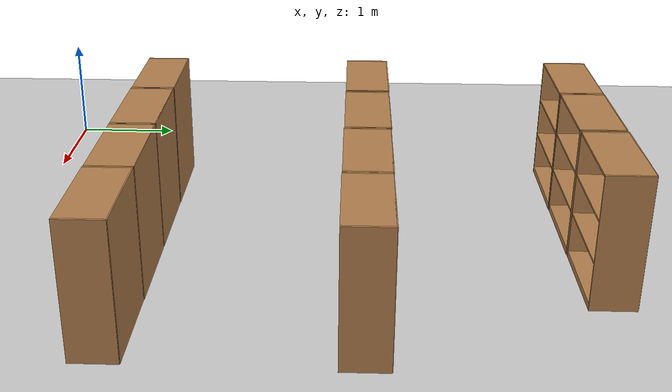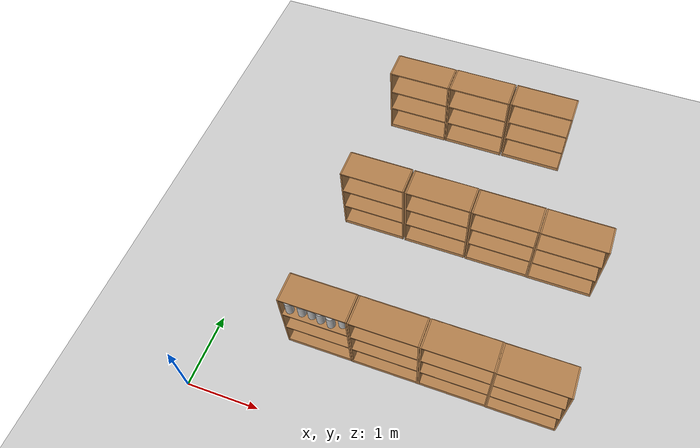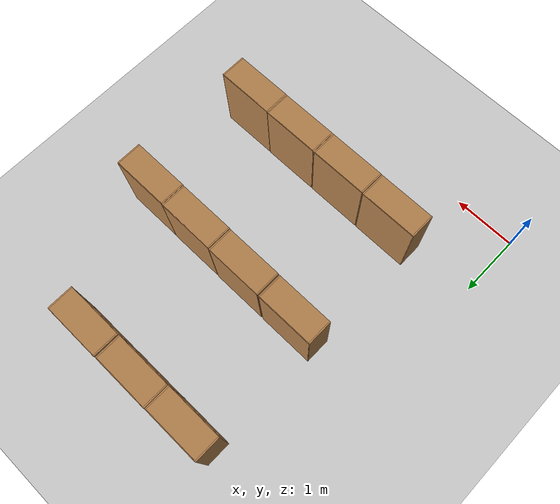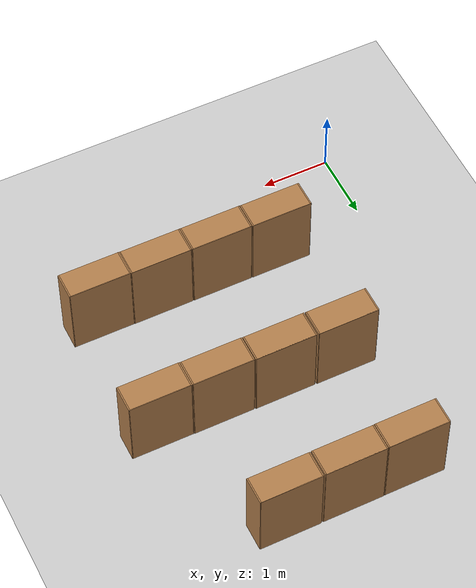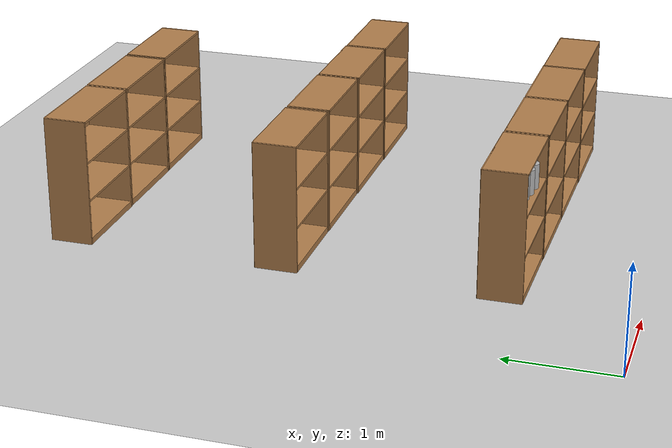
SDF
<sdf version="1.7">
 <world name="default">
  <model name="ground_plane">
   <static>1</static>
   <link name="link">
    <collision name="collision">
     <geometry><plane><normal>0 0 1</normal><size>100 100</size></plane></geometry>
     <surface>
      <contact><collide_bitmask>65535</collide_bitmask></contact>
      <friction><ode><mu>100</mu><mu2>50</mu2></ode></friction>
     </surface>
    </collision>
    <visual name="visual">
     <cast_shadows>0</cast_shadows>
     <geometry><plane><normal>0 0 1</normal><size>100 100</size></plane></geometry>
     <material>
      <script><uri>file://media/materials/scripts/gazebo.material</uri><name>Gazebo/Grey</name></script>
     </material>
    </visual>
   </link>
  </model>
  <model name="bookshelf">
   <static>1</static>
   <link name="link">
    <inertial><mass>1</mass></inertial>
    <collision name="back">
     <pose>0 0.005 0.6 0 -0 0</pose>
     <geometry><box><size>0.9 0.01 1.2</size></box></geometry>
    </collision>
    <visual name="visual1">
     <pose>0 0.005 0.6 0 -0 0</pose>
     <geometry><box><size>0.9 0.01 1.2</size></box></geometry>
     <material>
      <script><uri>file://media/materials/scripts/gazebo.material</uri><name>Gazebo/Wood</name></script>
     </material>
    </visual>
    <collision name="left_side">
     <pose>0.45 -0.195 0.6 0 -0 0</pose>
     <geometry><box><size>0.02 0.4 1.2</size></box></geometry>
    </collision>
    <visual name="visual2">
     <pose>0.45 -0.195 0.6 0 -0 0</pose>
     <geometry><box><size>0.02 0.4 1.2</size></box></geometry>
     <material>
      <script><uri>file://media/materials/scripts/gazebo.material</uri><name>Gazebo/Wood</name></script>
     </material>
    </visual>
    <collision name="right_side">
     <pose>-0.45 -0.195 0.6 0 -0 0</pose>
     <geometry><box><size>0.02 0.4 1.2</size></box></geometry>
    </collision>
    <visual name="visual3">
     <pose>-0.45 -0.195 0.6 0 -0 0</pose>
     <geometry><box><size>0.02 0.4 1.2</size></box></geometry>
     <material>
      <script><uri>file://media/materials/scripts/gazebo.material</uri><name>Gazebo/Wood</name></script>
     </material>
    </visual>
    <collision name="bottom">
     <pose>0 -0.195 0.03 0 -0 0</pose>
     <geometry><box><size>0.88 0.4 0.06</size></box></geometry>
    </collision>
    <visual name="visual4">
     <pose>0 -0.195 0.03 0 -0 0</pose>
     <geometry><box><size>0.88 0.4 0.06</size></box></geometry>
     <material>
      <script><uri>file://media/materials/scripts/gazebo.material</uri><name>Gazebo/Wood</name></script>
     </material>
    </visual>
    <collision name="top">
     <pose>0 -0.195 1.19 0 -0 0</pose>
     <geometry><box><size>0.88 0.4 0.02</size></box></geometry>
    </collision>
    <visual name="visual5">
     <pose>0 -0.195 1.19 0 -0 0</pose>
     <geometry><box><size>0.88 0.4 0.02</size></box></geometry>
     <material>
      <script><uri>file://media/materials/scripts/gazebo.material</uri><name>Gazebo/Wood</name></script>
     </material>
    </visual>
    <collision name="low_shelf">
     <pose>0 -0.195 0.43 0 -0 0</pose>
     <geometry><box><size>0.88 0.4 0.02</size></box></geometry>
    </collision>
    <visual name="visual6">
     <pose>0 -0.195 0.43 0 -0 0</pose>
     <geometry><box><size>0.88 0.4 0.02</size></box></geometry>
     <material>
      <script><uri>file://media/materials/scripts/gazebo.material</uri><name>Gazebo/Wood</name></script>
     </material>
    </visual>
    <collision name="high_shelf">
     <pose>0 -0.195 0.8 0 -0 0</pose>
     <geometry><box><size>0.88 0.4 0.02</size></box></geometry>
    </collision>
    <visual name="visual7">
     <pose>0 -0.195 0.8 0 -0 0</pose>
     <geometry><box><size>0.88 0.4 0.02</size></box></geometry>
     <material>
      <script><uri>file://media/materials/scripts/gazebo.material</uri><name>Gazebo/Wood</name></script>
     </material>
    </visual>
   </link>
   <pose>1.45184 3.43534 0 0 -0 0</pose>
  </model>
  <model name="bookshelf_0">
   <static>1</static>
   <link name="link">
    <inertial><mass>1</mass></inertial>
    <collision name="back">
     <pose>0 0.005 0.6 0 -0 0</pose>
     <geometry><box><size>0.9 0.01 1.2</size></box></geometry>
    </collision>
    <visual name="visual1">
     <pose>0 0.005 0.6 0 -0 0</pose>
     <geometry><box><size>0.9 0.01 1.2</size></box></geometry>
     <material>
      <script><uri>file://media/materials/scripts/gazebo.material</uri><name>Gazebo/Wood</name></script>
     </material>
    </visual>
    <collision name="left_side">
     <pose>0.45 -0.195 0.6 0 -0 0</pose>
     <geometry><box><size>0.02 0.4 1.2</size></box></geometry>
    </collision>
    <visual name="visual2">
     <pose>0.45 -0.195 0.6 0 -0 0</pose>
     <geometry><box><size>0.02 0.4 1.2</size></box></geometry>
     <material>
      <script><uri>file://media/materials/scripts/gazebo.material</uri><name>Gazebo/Wood</name></script>
     </material>
    </visual>
    <collision name="right_side">
     <pose>-0.45 -0.195 0.6 0 -0 0</pose>
     <geometry><box><size>0.02 0.4 1.2</size></box></geometry>
    </collision>
    <visual name="visual3">
     <pose>-0.45 -0.195 0.6 0 -0 0</pose>
     <geometry><box><size>0.02 0.4 1.2</size></box></geometry>
     <material>
      <script><uri>file://media/materials/scripts/gazebo.material</uri><name>Gazebo/Wood</name></script>
     </material>
    </visual>
    <collision name="bottom">
     <pose>0 -0.195 0.03 0 -0 0</pose>
     <geometry><box><size>0.88 0.4 0.06</size></box></geometry>
    </collision>
    <visual name="visual4">
     <pose>0 -0.195 0.03 0 -0 0</pose>
     <geometry><box><size>0.88 0.4 0.06</size></box></geometry>
     <material>
      <script><uri>file://media/materials/scripts/gazebo.material</uri><name>Gazebo/Wood</name></script>
     </material>
    </visual>
    <collision name="top">
     <pose>0 -0.195 1.19 0 -0 0</pose>
     <geometry><box><size>0.88 0.4 0.02</size></box></geometry>
    </collision>
    <visual name="visual5">
     <pose>0 -0.195 1.19 0 -0 0</pose>
     <geometry><box><size>0.88 0.4 0.02</size></box></geometry>
     <material>
      <script><uri>file://media/materials/scripts/gazebo.material</uri><name>Gazebo/Wood</name></script>
     </material>
    </visual>
    <collision name="low_shelf">
     <pose>0 -0.195 0.43 0 -0 0</pose>
     <geometry><box><size>0.88 0.4 0.02</size></box></geometry>
    </collision>
    <visual name="visual6">
     <pose>0 -0.195 0.43 0 -0 0</pose>
     <geometry><box><size>0.88 0.4 0.02</size></box></geometry>
     <material>
      <script><uri>file://media/materials/scripts/gazebo.material</uri><name>Gazebo/Wood</name></script>
     </material>
    </visual>
    <collision name="high_shelf">
     <pose>0 -0.195 0.8 0 -0 0</pose>
     <geometry><box><size>0.88 0.4 0.02</size></box></geometry>
    </collision>
    <visual name="visual7">
     <pose>0 -0.195 0.8 0 -0 0</pose>
     <geometry><box><size>0.88 0.4 0.02</size></box></geometry>
     <material>
      <script><uri>file://media/materials/scripts/gazebo.material</uri><name>Gazebo/Wood</name></script>
     </material>
    </visual>
   </link>
   <pose>2.39092 3.43134 0 0 -0 0</pose>
  </model>
  <model name="bookshelf_1">
   <static>1</static>
   <link name="link">
    <inertial><mass>1</mass></inertial>
    <collision name="back">
     <pose>0 0.005 0.6 0 -0 0</pose>
     <geometry><box><size>0.9 0.01 1.2</size></box></geometry>
    </collision>
    <visual name="visual1">
     <pose>0 0.005 0.6 0 -0 0</pose>
     <geometry><box><size>0.9 0.01 1.2</size></box></geometry>
     <material>
      <script><uri>file://media/materials/scripts/gazebo.material</uri><name>Gazebo/Wood</name></script>
     </material>
    </visual>
    <collision name="left_side">
     <pose>0.45 -0.195 0.6 0 -0 0</pose>
     <geometry><box><size>0.02 0.4 1.2</size></box></geometry>
    </collision>
    <visual name="visual2">
     <pose>0.45 -0.195 0.6 0 -0 0</pose>
     <geometry><box><size>0.02 0.4 1.2</size></box></geometry>
     <material>
      <script><uri>file://media/materials/scripts/gazebo.material</uri><name>Gazebo/Wood</name></script>
     </material>
    </visual>
    <collision name="right_side">
     <pose>-0.45 -0.195 0.6 0 -0 0</pose>
     <geometry><box><size>0.02 0.4 1.2</size></box></geometry>
    </collision>
    <visual name="visual3">
     <pose>-0.45 -0.195 0.6 0 -0 0</pose>
     <geometry><box><size>0.02 0.4 1.2</size></box></geometry>
     <material>
      <script><uri>file://media/materials/scripts/gazebo.material</uri><name>Gazebo/Wood</name></script>
     </material>
    </visual>
    <collision name="bottom">
     <pose>0 -0.195 0.03 0 -0 0</pose>
     <geometry><box><size>0.88 0.4 0.06</size></box></geometry>
    </collision>
    <visual name="visual4">
     <pose>0 -0.195 0.03 0 -0 0</pose>
     <geometry><box><size>0.88 0.4 0.06</size></box></geometry>
     <material>
      <script><uri>file://media/materials/scripts/gazebo.material</uri><name>Gazebo/Wood</name></script>
     </material>
    </visual>
    <collision name="top">
     <pose>0 -0.195 1.19 0 -0 0</pose>
     <geometry><box><size>0.88 0.4 0.02</size></box></geometry>
    </collision>
    <visual name="visual5">
     <pose>0 -0.195 1.19 0 -0 0</pose>
     <geometry><box><size>0.88 0.4 0.02</size></box></geometry>
     <material>
      <script><uri>file://media/materials/scripts/gazebo.material</uri><name>Gazebo/Wood</name></script>
     </material>
    </visual>
    <collision name="low_shelf">
     <pose>0 -0.195 0.43 0 -0 0</pose>
     <geometry><box><size>0.88 0.4 0.02</size></box></geometry>
    </collision>
    <visual name="visual6">
     <pose>0 -0.195 0.43 0 -0 0</pose>
     <geometry><box><size>0.88 0.4 0.02</size></box></geometry>
     <material>
      <script><uri>file://media/materials/scripts/gazebo.material</uri><name>Gazebo/Wood</name></script>
     </material>
    </visual>
    <collision name="high_shelf">
     <pose>0 -0.195 0.8 0 -0 0</pose>
     <geometry><box><size>0.88 0.4 0.02</size></box></geometry>
    </collision>
    <visual name="visual7">
     <pose>0 -0.195 0.8 0 -0 0</pose>
     <geometry><box><size>0.88 0.4 0.02</size></box></geometry>
     <material>
      <script><uri>file://media/materials/scripts/gazebo.material</uri><name>Gazebo/Wood</name></script>
     </material>
    </visual>
   </link>
   <pose>3.31925 3.42546 0 0 -0 0</pose>
  </model>
  <model name="bookshelf_2">
   <static>1</static>
   <link name="link">
    <inertial><mass>1</mass></inertial>
    <collision name="back">
     <pose>0 0.005 0.6 0 -0 0</pose>
     <geometry><box><size>0.9 0.01 1.2</size></box></geometry>
    </collision>
    <visual name="visual1">
     <pose>0 0.005 0.6 0 -0 0</pose>
     <geometry><box><size>0.9 0.01 1.2</size></box></geometry>
     <material>
      <script><uri>file://media/materials/scripts/gazebo.material</uri><name>Gazebo/Wood</name></script>
     </material>
    </visual>
    <collision name="left_side">
     <pose>0.45 -0.195 0.6 0 -0 0</pose>
     <geometry><box><size>0.02 0.4 1.2</size></box></geometry>
    </collision>
    <visual name="visual2">
     <pose>0.45 -0.195 0.6 0 -0 0</pose>
     <geometry><box><size>0.02 0.4 1.2</size></box></geometry>
     <material>
      <script><uri>file://media/materials/scripts/gazebo.material</uri><name>Gazebo/Wood</name></script>
     </material>
    </visual>
    <collision name="right_side">
     <pose>-0.45 -0.195 0.6 0 -0 0</pose>
     <geometry><box><size>0.02 0.4 1.2</size></box></geometry>
    </collision>
    <visual name="visual3">
     <pose>-0.45 -0.195 0.6 0 -0 0</pose>
     <geometry><box><size>0.02 0.4 1.2</size></box></geometry>
     <material>
      <script><uri>file://media/materials/scripts/gazebo.material</uri><name>Gazebo/Wood</name></script>
     </material>
    </visual>
    <collision name="bottom">
     <pose>0 -0.195 0.03 0 -0 0</pose>
     <geometry><box><size>0.88 0.4 0.06</size></box></geometry>
    </collision>
    <visual name="visual4">
     <pose>0 -0.195 0.03 0 -0 0</pose>
     <geometry><box><size>0.88 0.4 0.06</size></box></geometry>
     <material>
      <script><uri>file://media/materials/scripts/gazebo.material</uri><name>Gazebo/Wood</name></script>
     </material>
    </visual>
    <collision name="top">
     <pose>0 -0.195 1.19 0 -0 0</pose>
     <geometry><box><size>0.88 0.4 0.02</size></box></geometry>
    </collision>
    <visual name="visual5">
     <pose>0 -0.195 1.19 0 -0 0</pose>
     <geometry><box><size>0.88 0.4 0.02</size></box></geometry>
     <material>
      <script><uri>file://media/materials/scripts/gazebo.material</uri><name>Gazebo/Wood</name></script>
     </material>
    </visual>
    <collision name="low_shelf">
     <pose>0 -0.195 0.43 0 -0 0</pose>
     <geometry><box><size>0.88 0.4 0.02</size></box></geometry>
    </collision>
    <visual name="visual6">
     <pose>0 -0.195 0.43 0 -0 0</pose>
     <geometry><box><size>0.88 0.4 0.02</size></box></geometry>
     <material>
      <script><uri>file://media/materials/scripts/gazebo.material</uri><name>Gazebo/Wood</name></script>
     </material>
    </visual>
    <collision name="high_shelf">
     <pose>0 -0.195 0.8 0 -0 0</pose>
     <geometry><box><size>0.88 0.4 0.02</size></box></geometry>
    </collision>
    <visual name="visual7">
     <pose>0 -0.195 0.8 0 -0 0</pose>
     <geometry><box><size>0.88 0.4 0.02</size></box></geometry>
     <material>
      <script><uri>file://media/materials/scripts/gazebo.material</uri><name>Gazebo/Wood</name></script>
     </material>
    </visual>
   </link>
   <pose>4.24207 3.42066 0 0 -0 0</pose>
  </model>
  <model name="bookshelf_3">
   <static>1</static>
   <link name="link">
    <inertial><mass>1</mass></inertial>
    <collision name="back">
     <pose>0 0.005 0.6 0 -0 0</pose>
     <geometry><box><size>0.9 0.01 1.2</size></box></geometry>
    </collision>
    <visual name="visual1">
     <pose>0 0.005 0.6 0 -0 0</pose>
     <geometry><box><size>0.9 0.01 1.2</size></box></geometry>
     <material>
      <script><uri>file://media/materials/scripts/gazebo.material</uri><name>Gazebo/Wood</name></script>
     </material>
    </visual>
    <collision name="left_side">
     <pose>0.45 -0.195 0.6 0 -0 0</pose>
     <geometry><box><size>0.02 0.4 1.2</size></box></geometry>
    </collision>
    <visual name="visual2">
     <pose>0.45 -0.195 0.6 0 -0 0</pose>
     <geometry><box><size>0.02 0.4 1.2</size></box></geometry>
     <material>
      <script><uri>file://media/materials/scripts/gazebo.material</uri><name>Gazebo/Wood</name></script>
     </material>
    </visual>
    <collision name="right_side">
     <pose>-0.45 -0.195 0.6 0 -0 0</pose>
     <geometry><box><size>0.02 0.4 1.2</size></box></geometry>
    </collision>
    <visual name="visual3">
     <pose>-0.45 -0.195 0.6 0 -0 0</pose>
     <geometry><box><size>0.02 0.4 1.2</size></box></geometry>
     <material>
      <script><uri>file://media/materials/scripts/gazebo.material</uri><name>Gazebo/Wood</name></script>
     </material>
    </visual>
    <collision name="bottom">
     <pose>0 -0.195 0.03 0 -0 0</pose>
     <geometry><box><size>0.88 0.4 0.06</size></box></geometry>
    </collision>
    <visual name="visual4">
     <pose>0 -0.195 0.03 0 -0 0</pose>
     <geometry><box><size>0.88 0.4 0.06</size></box></geometry>
     <material>
      <script><uri>file://media/materials/scripts/gazebo.material</uri><name>Gazebo/Wood</name></script>
     </material>
    </visual>
    <collision name="top">
     <pose>0 -0.195 1.19 0 -0 0</pose>
     <geometry><box><size>0.88 0.4 0.02</size></box></geometry>
    </collision>
    <visual name="visual5">
     <pose>0 -0.195 1.19 0 -0 0</pose>
     <geometry><box><size>0.88 0.4 0.02</size></box></geometry>
     <material>
      <script><uri>file://media/materials/scripts/gazebo.material</uri><name>Gazebo/Wood</name></script>
     </material>
    </visual>
    <collision name="low_shelf">
     <pose>0 -0.195 0.43 0 -0 0</pose>
     <geometry><box><size>0.88 0.4 0.02</size></box></geometry>
    </collision>
    <visual name="visual6">
     <pose>0 -0.195 0.43 0 -0 0</pose>
     <geometry><box><size>0.88 0.4 0.02</size></box></geometry>
     <material>
      <script><uri>file://media/materials/scripts/gazebo.material</uri><name>Gazebo/Wood</name></script>
     </material>
    </visual>
    <collision name="high_shelf">
     <pose>0 -0.195 0.8 0 -0 0</pose>
     <geometry><box><size>0.88 0.4 0.02</size></box></geometry>
    </collision>
    <visual name="visual7">
     <pose>0 -0.195 0.8 0 -0 0</pose>
     <geometry><box><size>0.88 0.4 0.02</size></box></geometry>
     <material>
      <script><uri>file://media/materials/scripts/gazebo.material</uri><name>Gazebo/Wood</name></script>
     </material>
    </visual>
   </link>
   <pose>1.4441 1.40563 0 -0.000728 0 0</pose>
  </model>
  <model name="bookshelf_4">
   <static>1</static>
   <link name="link">
    <inertial><mass>1</mass></inertial>
    <collision name="back">
     <pose>0 0.005 0.6 0 -0 0</pose>
     <geometry><box><size>0.9 0.01 1.2</size></box></geometry>
    </collision>
    <visual name="visual1">
     <pose>0 0.005 0.6 0 -0 0</pose>
     <geometry><box><size>0.9 0.01 1.2</size></box></geometry>
     <material>
      <script><uri>file://media/materials/scripts/gazebo.material</uri><name>Gazebo/Wood</name></script>
     </material>
    </visual>
    <collision name="left_side">
     <pose>0.45 -0.195 0.6 0 -0 0</pose>
     <geometry><box><size>0.02 0.4 1.2</size></box></geometry>
    </collision>
    <visual name="visual2">
     <pose>0.45 -0.195 0.6 0 -0 0</pose>
     <geometry><box><size>0.02 0.4 1.2</size></box></geometry>
     <material>
      <script><uri>file://media/materials/scripts/gazebo.material</uri><name>Gazebo/Wood</name></script>
     </material>
    </visual>
    <collision name="right_side">
     <pose>-0.45 -0.195 0.6 0 -0 0</pose>
     <geometry><box><size>0.02 0.4 1.2</size></box></geometry>
    </collision>
    <visual name="visual3">
     <pose>-0.45 -0.195 0.6 0 -0 0</pose>
     <geometry><box><size>0.02 0.4 1.2</size></box></geometry>
     <material>
      <script><uri>file://media/materials/scripts/gazebo.material</uri><name>Gazebo/Wood</name></script>
     </material>
    </visual>
    <collision name="bottom">
     <pose>0 -0.195 0.03 0 -0 0</pose>
     <geometry><box><size>0.88 0.4 0.06</size></box></geometry>
    </collision>
    <visual name="visual4">
     <pose>0 -0.195 0.03 0 -0 0</pose>
     <geometry><box><size>0.88 0.4 0.06</size></box></geometry>
     <material>
      <script><uri>file://media/materials/scripts/gazebo.material</uri><name>Gazebo/Wood</name></script>
     </material>
    </visual>
    <collision name="top">
     <pose>0 -0.195 1.19 0 -0 0</pose>
     <geometry><box><size>0.88 0.4 0.02</size></box></geometry>
    </collision>
    <visual name="visual5">
     <pose>0 -0.195 1.19 0 -0 0</pose>
     <geometry><box><size>0.88 0.4 0.02</size></box></geometry>
     <material>
      <script><uri>file://media/materials/scripts/gazebo.material</uri><name>Gazebo/Wood</name></script>
     </material>
    </visual>
    <collision name="low_shelf">
     <pose>0 -0.195 0.43 0 -0 0</pose>
     <geometry><box><size>0.88 0.4 0.02</size></box></geometry>
    </collision>
    <visual name="visual6">
     <pose>0 -0.195 0.43 0 -0 0</pose>
     <geometry><box><size>0.88 0.4 0.02</size></box></geometry>
     <material>
      <script><uri>file://media/materials/scripts/gazebo.material</uri><name>Gazebo/Wood</name></script>
     </material>
    </visual>
    <collision name="high_shelf">
     <pose>0 -0.195 0.8 0 -0 0</pose>
     <geometry><box><size>0.88 0.4 0.02</size></box></geometry>
    </collision>
    <visual name="visual7">
     <pose>0 -0.195 0.8 0 -0 0</pose>
     <geometry><box><size>0.88 0.4 0.02</size></box></geometry>
     <material>
      <script><uri>file://media/materials/scripts/gazebo.material</uri><name>Gazebo/Wood</name></script>
     </material>
    </visual>
   </link>
   <pose>2.36984 1.40261 0 0 -0 0</pose>
  </model>
  <model name="bookshelf_5">
   <static>1</static>
   <link name="link">
    <inertial><mass>1</mass></inertial>
    <collision name="back">
     <pose>0 0.005 0.6 0 -0 0</pose>
     <geometry><box><size>0.9 0.01 1.2</size></box></geometry>
    </collision>
    <visual name="visual1">
     <pose>0 0.005 0.6 0 -0 0</pose>
     <geometry><box><size>0.9 0.01 1.2</size></box></geometry>
     <material>
      <script><uri>file://media/materials/scripts/gazebo.material</uri><name>Gazebo/Wood</name></script>
     </material>
    </visual>
    <collision name="left_side">
     <pose>0.45 -0.195 0.6 0 -0 0</pose>
     <geometry><box><size>0.02 0.4 1.2</size></box></geometry>
    </collision>
    <visual name="visual2">
     <pose>0.45 -0.195 0.6 0 -0 0</pose>
     <geometry><box><size>0.02 0.4 1.2</size></box></geometry>
     <material>
      <script><uri>file://media/materials/scripts/gazebo.material</uri><name>Gazebo/Wood</name></script>
     </material>
    </visual>
    <collision name="right_side">
     <pose>-0.45 -0.195 0.6 0 -0 0</pose>
     <geometry><box><size>0.02 0.4 1.2</size></box></geometry>
    </collision>
    <visual name="visual3">
     <pose>-0.45 -0.195 0.6 0 -0 0</pose>
     <geometry><box><size>0.02 0.4 1.2</size></box></geometry>
     <material>
      <script><uri>file://media/materials/scripts/gazebo.material</uri><name>Gazebo/Wood</name></script>
     </material>
    </visual>
    <collision name="bottom">
     <pose>0 -0.195 0.03 0 -0 0</pose>
     <geometry><box><size>0.88 0.4 0.06</size></box></geometry>
    </collision>
    <visual name="visual4">
     <pose>0 -0.195 0.03 0 -0 0</pose>
     <geometry><box><size>0.88 0.4 0.06</size></box></geometry>
     <material>
      <script><uri>file://media/materials/scripts/gazebo.material</uri><name>Gazebo/Wood</name></script>
     </material>
    </visual>
    <collision name="top">
     <pose>0 -0.195 1.19 0 -0 0</pose>
     <geometry><box><size>0.88 0.4 0.02</size></box></geometry>
    </collision>
    <visual name="visual5">
     <pose>0 -0.195 1.19 0 -0 0</pose>
     <geometry><box><size>0.88 0.4 0.02</size></box></geometry>
     <material>
      <script><uri>file://media/materials/scripts/gazebo.material</uri><name>Gazebo/Wood</name></script>
     </material>
    </visual>
    <collision name="low_shelf">
     <pose>0 -0.195 0.43 0 -0 0</pose>
     <geometry><box><size>0.88 0.4 0.02</size></box></geometry>
    </collision>
    <visual name="visual6">
     <pose>0 -0.195 0.43 0 -0 0</pose>
     <geometry><box><size>0.88 0.4 0.02</size></box></geometry>
     <material>
      <script><uri>file://media/materials/scripts/gazebo.material</uri><name>Gazebo/Wood</name></script>
     </material>
    </visual>
    <collision name="high_shelf">
     <pose>0 -0.195 0.8 0 -0 0</pose>
     <geometry><box><size>0.88 0.4 0.02</size></box></geometry>
    </collision>
    <visual name="visual7">
     <pose>0 -0.195 0.8 0 -0 0</pose>
     <geometry><box><size>0.88 0.4 0.02</size></box></geometry>
     <material>
      <script><uri>file://media/materials/scripts/gazebo.material</uri><name>Gazebo/Wood</name></script>
     </material>
    </visual>
   </link>
   <pose>3.29308 1.40142 0 0 -0 0</pose>
  </model>
  <model name="bookshelf_6">
   <static>1</static>
   <link name="link">
    <inertial><mass>1</mass></inertial>
    <collision name="back">
     <pose>0 0.005 0.6 0 -0 0</pose>
     <geometry><box><size>0.9 0.01 1.2</size></box></geometry>
    </collision>
    <visual name="visual1">
     <pose>0 0.005 0.6 0 -0 0</pose>
     <geometry><box><size>0.9 0.01 1.2</size></box></geometry>
     <material>
      <script><uri>file://media/materials/scripts/gazebo.material</uri><name>Gazebo/Wood</name></script>
     </material>
    </visual>
    <collision name="left_side">
     <pose>0.45 -0.195 0.6 0 -0 0</pose>
     <geometry><box><size>0.02 0.4 1.2</size></box></geometry>
    </collision>
    <visual name="visual2">
     <pose>0.45 -0.195 0.6 0 -0 0</pose>
     <geometry><box><size>0.02 0.4 1.2</size></box></geometry>
     <material>
      <script><uri>file://media/materials/scripts/gazebo.material</uri><name>Gazebo/Wood</name></script>
     </material>
    </visual>
    <collision name="right_side">
     <pose>-0.45 -0.195 0.6 0 -0 0</pose>
     <geometry><box><size>0.02 0.4 1.2</size></box></geometry>
    </collision>
    <visual name="visual3">
     <pose>-0.45 -0.195 0.6 0 -0 0</pose>
     <geometry><box><size>0.02 0.4 1.2</size></box></geometry>
     <material>
      <script><uri>file://media/materials/scripts/gazebo.material</uri><name>Gazebo/Wood</name></script>
     </material>
    </visual>
    <collision name="bottom">
     <pose>0 -0.195 0.03 0 -0 0</pose>
     <geometry><box><size>0.88 0.4 0.06</size></box></geometry>
    </collision>
    <visual name="visual4">
     <pose>0 -0.195 0.03 0 -0 0</pose>
     <geometry><box><size>0.88 0.4 0.06</size></box></geometry>
     <material>
      <script><uri>file://media/materials/scripts/gazebo.material</uri><name>Gazebo/Wood</name></script>
     </material>
    </visual>
    <collision name="top">
     <pose>0 -0.195 1.19 0 -0 0</pose>
     <geometry><box><size>0.88 0.4 0.02</size></box></geometry>
    </collision>
    <visual name="visual5">
     <pose>0 -0.195 1.19 0 -0 0</pose>
     <geometry><box><size>0.88 0.4 0.02</size></box></geometry>
     <material>
      <script><uri>file://media/materials/scripts/gazebo.material</uri><name>Gazebo/Wood</name></script>
     </material>
    </visual>
    <collision name="low_shelf">
     <pose>0 -0.195 0.43 0 -0 0</pose>
     <geometry><box><size>0.88 0.4 0.02</size></box></geometry>
    </collision>
    <visual name="visual6">
     <pose>0 -0.195 0.43 0 -0 0</pose>
     <geometry><box><size>0.88 0.4 0.02</size></box></geometry>
     <material>
      <script><uri>file://media/materials/scripts/gazebo.material</uri><name>Gazebo/Wood</name></script>
     </material>
    </visual>
    <collision name="high_shelf">
     <pose>0 -0.195 0.8 0 -0 0</pose>
     <geometry><box><size>0.88 0.4 0.02</size></box></geometry>
    </collision>
    <visual name="visual7">
     <pose>0 -0.195 0.8 0 -0 0</pose>
     <geometry><box><size>0.88 0.4 0.02</size></box></geometry>
     <material>
      <script><uri>file://media/materials/scripts/gazebo.material</uri><name>Gazebo/Wood</name></script>
     </material>
    </visual>
   </link>
   <pose>4.20808 1.39756 0 0 -0 0</pose>
  </model>
  <model name="beer">
   <link name="link">
    <pose>0 0 0.115 0 -0 0</pose>
    <inertial>
     <mass>0.39</mass>
     <inertia><ixx>0.00058</ixx><ixy>0</ixy><ixz>0</ixz><iyy>0.00058</iyy><iyz>0</iyz><izz>0.00019</izz></inertia>
    </inertial>
    <collision name="collision">
     <geometry><cylinder><radius>0.055</radius><length>0.23</length></cylinder></geometry>
    </collision>
    <visual name="visual">
     <geometry><cylinder><radius>0.055</radius><length>0.23</length></cylinder></geometry>
     <material>
      <script>
       <uri>model://beer/materials/scripts</uri>
       <uri>model://beer/materials/textures</uri>
       <name>Beer/Diffuse</name>
      </script>
     </material>
    </visual>
   </link>
   <pose>1.07643 1.34971 0.810045 -0.000795 1e-06 0.001874</pose>
  </model>
  <model name="beer_0">
   <link name="link">
    <pose>0 0 0.115 0 -0 0</pose>
    <inertial>
     <mass>0.39</mass>
     <inertia><ixx>0.00058</ixx><ixy>0</ixy><ixz>0</ixz><iyy>0.00058</iyy><iyz>0</iyz><izz>0.00019</izz></inertia>
    </inertial>
    <collision name="collision">
     <geometry><cylinder><radius>0.055</radius><length>0.23</length></cylinder></geometry>
    </collision>
    <visual name="visual">
     <geometry><cylinder><radius>0.055</radius><length>0.23</length></cylinder></geometry>
     <material>
      <script>
       <uri>model://beer/materials/scripts</uri>
       <uri>model://beer/materials/textures</uri>
       <name>Beer/Diffuse</name>
      </script>
     </material>
    </visual>
   </link>
   <pose>1.07637 1.09988 0.810215 -0.000772 1e-06 0.001866</pose>
  </model>
  <model name="beer_1">
   <link name="link">
    <pose>0 0 0.115 0 -0 0</pose>
    <inertial>
     <mass>0.39</mass>
     <inertia><ixx>0.00058</ixx><ixy>0</ixy><ixz>0</ixz><iyy>0.00058</iyy><iyz>0</iyz><izz>0.00019</izz></inertia>
    </inertial>
    <collision name="collision">
     <geometry><cylinder><radius>0.055</radius><length>0.23</length></cylinder></geometry>
    </collision>
    <visual name="visual">
     <geometry><cylinder><radius>0.055</radius><length>0.23</length></cylinder></geometry>
     <material>
      <script>
       <uri>model://beer/materials/scripts</uri>
       <uri>model://beer/materials/textures</uri>
       <name>Beer/Diffuse</name>
      </script>
     </material>
    </visual>
   </link>
   <pose>1.23231 1.33918 0.81004 -0.000744 1.6e-05 0.001694</pose>
  </model>
  <model name="beer_2">
   <link name="link">
    <pose>0 0 0.115 0 -0 0</pose>
    <inertial>
     <mass>0.39</mass>
     <inertia><ixx>0.00058</ixx><ixy>0</ixy><ixz>0</ixz><iyy>0.00058</iyy><iyz>0</iyz><izz>0.00019</izz></inertia>
    </inertial>
    <collision name="collision">
     <geometry><cylinder><radius>0.055</radius><length>0.23</length></cylinder></geometry>
    </collision>
    <visual name="visual">
     <geometry><cylinder><radius>0.055</radius><length>0.23</length></cylinder></geometry>
     <material>
      <script>
       <uri>model://beer/materials/scripts</uri>
       <uri>model://beer/materials/textures</uri>
       <name>Beer/Diffuse</name>
      </script>
     </material>
    </visual>
   </link>
   <pose>1.24062 1.11321 0.810216 -0.000764 2.6e-05 0.001054</pose>
  </model>
  <model name="beer_3">
   <link name="link">
    <pose>0 0 0.115 0 -0 0</pose>
    <inertial>
     <mass>0.39</mass>
     <inertia><ixx>0.00058</ixx><ixy>0</ixy><ixz>0</ixz><iyy>0.00058</iyy><iyz>0</iyz><izz>0.00019</izz></inertia>
    </inertial>
    <collision name="collision">
     <geometry><cylinder><radius>0.055</radius><length>0.23</length></cylinder></geometry>
    </collision>
    <visual name="visual">
     <geometry><cylinder><radius>0.055</radius><length>0.23</length></cylinder></geometry>
     <material>
      <script>
       <uri>model://beer/materials/scripts</uri>
       <uri>model://beer/materials/textures</uri>
       <name>Beer/Diffuse</name>
      </script>
     </material>
    </visual>
   </link>
   <pose>1.37249 1.34325 0.810047 -0.000742 1.8e-05 0.001372</pose>
  </model>
  <model name="beer_4">
   <link name="link">
    <pose>0 0 0.115 0 -0 0</pose>
    <inertial>
     <mass>0.39</mass>
     <inertia><ixx>0.00058</ixx><ixy>0</ixy><ixz>0</ixz><iyy>0.00058</iyy><iyz>0</iyz><izz>0.00019</izz></inertia>
    </inertial>
    <collision name="collision">
     <geometry><cylinder><radius>0.055</radius><length>0.23</length></cylinder></geometry>
    </collision>
    <visual name="visual">
     <geometry><cylinder><radius>0.055</radius><length>0.23</length></cylinder></geometry>
     <material>
      <script>
       <uri>model://beer/materials/scripts</uri>
       <uri>model://beer/materials/textures</uri>
       <name>Beer/Diffuse</name>
      </script>
     </material>
    </visual>
   </link>
   <pose>1.37423 1.12023 0.810211 -0.00079 -2e-06 0.001119</pose>
  </model>
  <model name="beer_7">
   <link name="link">
    <pose>0 0 0.115 0 -0 0</pose>
    <inertial>
     <mass>0.39</mass>
     <inertia><ixx>0.00058</ixx><ixy>0</ixy><ixz>0</ixz><iyy>0.00058</iyy><iyz>0</iyz><izz>0.00019</izz></inertia>
    </inertial>
    <collision name="collision">
     <geometry><cylinder><radius>0.055</radius><length>0.23</length></cylinder></geometry>
    </collision>
    <visual name="visual">
     <geometry><cylinder><radius>0.055</radius><length>0.23</length></cylinder></geometry>
     <material>
      <script>
       <uri>model://beer/materials/scripts</uri>
       <uri>model://beer/materials/textures</uri>
       <name>Beer/Diffuse</name>
      </script>
     </material>
    </visual>
   </link>
   <pose>1.63489 1.248 0.810119 -0.000793 0 0.002508</pose>
  </model>
  <model name="beer_8">
   <link name="link">
    <pose>0 0 0.115 0 -0 0</pose>
    <inertial>
     <mass>0.39</mass>
     <inertia><ixx>0.00058</ixx><ixy>0</ixy><ixz>0</ixz><iyy>0.00058</iyy><iyz>0</iyz><izz>0.00019</izz></inertia>
    </inertial>
    <collision name="collision">
     <geometry><cylinder><radius>0.055</radius><length>0.23</length></cylinder></geometry>
    </collision>
    <visual name="visual">
     <geometry><cylinder><radius>0.055</radius><length>0.23</length></cylinder></geometry>
     <material>
      <script>
       <uri>model://beer/materials/scripts</uri>
       <uri>model://beer/materials/textures</uri>
       <name>Beer/Diffuse</name>
      </script>
     </material>
    </visual>
   </link>
   <pose>1.64383 1.09076 0.810234 -0.000808 -5e-06 8.4e-05</pose>
  </model>
  <model name="beer_9">
   <link name="link">
    <pose>0 0 0.115 0 -0 0</pose>
    <inertial>
     <mass>0.39</mass>
     <inertia><ixx>0.00058</ixx><ixy>0</ixy><ixz>0</ixz><iyy>0.00058</iyy><iyz>0</iyz><izz>0.00019</izz></inertia>
    </inertial>
    <collision name="collision">
     <geometry><cylinder><radius>0.055</radius><length>0.23</length></cylinder></geometry>
    </collision>
    <visual name="visual">
     <geometry><cylinder><radius>0.055</radius><length>0.23</length></cylinder></geometry>
     <material>
      <script>
       <uri>model://beer/materials/scripts</uri>
       <uri>model://beer/materials/textures</uri>
       <name>Beer/Diffuse</name>
      </script>
     </material>
    </visual>
   </link>
   <pose>1.79744 1.34028 0.81004 -0.000772 2e-06 0.003764</pose>
  </model>
  <model name="beer_10">
   <link name="link">
    <pose>0 0 0.115 0 -0 0</pose>
    <inertial>
     <mass>0.39</mass>
     <inertia><ixx>0.00058</ixx><ixy>0</ixy><ixz>0</ixz><iyy>0.00058</iyy><iyz>0</iyz><izz>0.00019</izz></inertia>
    </inertial>
    <collision name="collision">
     <geometry><cylinder><radius>0.055</radius><length>0.23</length></cylinder></geometry>
    </collision>
    <visual name="visual">
     <geometry><cylinder><radius>0.055</radius><length>0.23</length></cylinder></geometry>
     <material>
      <script>
       <uri>model://beer/materials/scripts</uri>
       <uri>model://beer/materials/textures</uri>
       <name>Beer/Diffuse</name>
      </script>
     </material>
    </visual>
   </link>
   <pose>1.78444 1.13593 0.8102 -0.000797 -2e-06 -0.000115</pose>
  </model>
  <model name="beer_5">
   <link name="link">
    <pose>0 0 0.115 0 -0 0</pose>
    <inertial>
     <mass>0.39</mass>
     <inertia><ixx>0.00058</ixx><ixy>0</ixy><ixz>0</ixz><iyy>0.00058</iyy><iyz>0</iyz><izz>0.00019</izz></inertia>
    </inertial>
    <collision name="collision">
     <geometry><cylinder><radius>0.055</radius><length>0.23</length></cylinder></geometry>
    </collision>
    <visual name="visual">
     <geometry><cylinder><radius>0.055</radius><length>0.23</length></cylinder></geometry>
     <material>
      <script>
       <uri>model://beer/materials/scripts</uri>
       <uri>model://beer/materials/textures</uri>
       <name>Beer/Diffuse</name>
      </script>
     </material>
    </visual>
   </link>
   <pose>1.5002 1.10254 0.810219 -0.000677 -1.9e-05 0.0002</pose>
  </model>
  <model name="bookshelf_7">
   <static>1</static>
   <link name="link">
    <inertial><mass>1</mass></inertial>
    <collision name="back">
     <pose>0 0.005 0.6 0 -0 0</pose>
     <geometry><box><size>0.9 0.01 1.2</size></box></geometry>
    </collision>
    <visual name="visual1">
     <pose>0 0.005 0.6 0 -0 0</pose>
     <geometry><box><size>0.9 0.01 1.2</size></box></geometry>
     <material>
      <script><uri>file://media/materials/scripts/gazebo.material</uri><name>Gazebo/Wood</name></script>
     </material>
    </visual>
    <collision name="left_side">
     <pose>0.45 -0.195 0.6 0 -0 0</pose>
     <geometry><box><size>0.02 0.4 1.2</size></box></geometry>
    </collision>
    <visual name="visual2">
     <pose>0.45 -0.195 0.6 0 -0 0</pose>
     <geometry><box><size>0.02 0.4 1.2</size></box></geometry>
     <material>
      <script><uri>file://media/materials/scripts/gazebo.material</uri><name>Gazebo/Wood</name></script>
     </material>
    </visual>
    <collision name="right_side">
     <pose>-0.45 -0.195 0.6 0 -0 0</pose>
     <geometry><box><size>0.02 0.4 1.2</size></box></geometry>
    </collision>
    <visual name="visual3">
     <pose>-0.45 -0.195 0.6 0 -0 0</pose>
     <geometry><box><size>0.02 0.4 1.2</size></box></geometry>
     <material>
      <script><uri>file://media/materials/scripts/gazebo.material</uri><name>Gazebo/Wood</name></script>
     </material>
    </visual>
    <collision name="bottom">
     <pose>0 -0.195 0.03 0 -0 0</pose>
     <geometry><box><size>0.88 0.4 0.06</size></box></geometry>
    </collision>
    <visual name="visual4">
     <pose>0 -0.195 0.03 0 -0 0</pose>
     <geometry><box><size>0.88 0.4 0.06</size></box></geometry>
     <material>
      <script><uri>file://media/materials/scripts/gazebo.material</uri><name>Gazebo/Wood</name></script>
     </material>
    </visual>
    <collision name="top">
     <pose>0 -0.195 1.19 0 -0 0</pose>
     <geometry><box><size>0.88 0.4 0.02</size></box></geometry>
    </collision>
    <visual name="visual5">
     <pose>0 -0.195 1.19 0 -0 0</pose>
     <geometry><box><size>0.88 0.4 0.02</size></box></geometry>
     <material>
      <script><uri>file://media/materials/scripts/gazebo.material</uri><name>Gazebo/Wood</name></script>
     </material>
    </visual>
    <collision name="low_shelf">
     <pose>0 -0.195 0.43 0 -0 0</pose>
     <geometry><box><size>0.88 0.4 0.02</size></box></geometry>
    </collision>
    <visual name="visual6">
     <pose>0 -0.195 0.43 0 -0 0</pose>
     <geometry><box><size>0.88 0.4 0.02</size></box></geometry>
     <material>
      <script><uri>file://media/materials/scripts/gazebo.material</uri><name>Gazebo/Wood</name></script>
     </material>
    </visual>
    <collision name="high_shelf">
     <pose>0 -0.195 0.8 0 -0 0</pose>
     <geometry><box><size>0.88 0.4 0.02</size></box></geometry>
    </collision>
    <visual name="visual7">
     <pose>0 -0.195 0.8 0 -0 0</pose>
     <geometry><box><size>0.88 0.4 0.02</size></box></geometry>
     <material>
      <script><uri>file://media/materials/scripts/gazebo.material</uri><name>Gazebo/Wood</name></script>
     </material>
    </visual>
   </link>
   <pose>1.45548 5.42474 0 0 -0 0</pose>
  </model>
  <model name="bookshelf_8">
   <static>1</static>
   <link name="link">
    <inertial><mass>1</mass></inertial>
    <collision name="back">
     <pose>0 0.005 0.6 0 -0 0</pose>
     <geometry><box><size>0.9 0.01 1.2</size></box></geometry>
    </collision>
    <visual name="visual1">
     <pose>0 0.005 0.6 0 -0 0</pose>
     <geometry><box><size>0.9 0.01 1.2</size></box></geometry>
     <material>
      <script><uri>file://media/materials/scripts/gazebo.material</uri><name>Gazebo/Wood</name></script>
     </material>
    </visual>
    <collision name="left_side">
     <pose>0.45 -0.195 0.6 0 -0 0</pose>
     <geometry><box><size>0.02 0.4 1.2</size></box></geometry>
    </collision>
    <visual name="visual2">
     <pose>0.45 -0.195 0.6 0 -0 0</pose>
     <geometry><box><size>0.02 0.4 1.2</size></box></geometry>
     <material>
      <script><uri>file://media/materials/scripts/gazebo.material</uri><name>Gazebo/Wood</name></script>
     </material>
    </visual>
    <collision name="right_side">
     <pose>-0.45 -0.195 0.6 0 -0 0</pose>
     <geometry><box><size>0.02 0.4 1.2</size></box></geometry>
    </collision>
    <visual name="visual3">
     <pose>-0.45 -0.195 0.6 0 -0 0</pose>
     <geometry><box><size>0.02 0.4 1.2</size></box></geometry>
     <material>
      <script><uri>file://media/materials/scripts/gazebo.material</uri><name>Gazebo/Wood</name></script>
     </material>
    </visual>
    <collision name="bottom">
     <pose>0 -0.195 0.03 0 -0 0</pose>
     <geometry><box><size>0.88 0.4 0.06</size></box></geometry>
    </collision>
    <visual name="visual4">
     <pose>0 -0.195 0.03 0 -0 0</pose>
     <geometry><box><size>0.88 0.4 0.06</size></box></geometry>
     <material>
      <script><uri>file://media/materials/scripts/gazebo.material</uri><name>Gazebo/Wood</name></script>
     </material>
    </visual>
    <collision name="top">
     <pose>0 -0.195 1.19 0 -0 0</pose>
     <geometry><box><size>0.88 0.4 0.02</size></box></geometry>
    </collision>
    <visual name="visual5">
     <pose>0 -0.195 1.19 0 -0 0</pose>
     <geometry><box><size>0.88 0.4 0.02</size></box></geometry>
     <material>
      <script><uri>file://media/materials/scripts/gazebo.material</uri><name>Gazebo/Wood</name></script>
     </material>
    </visual>
    <collision name="low_shelf">
     <pose>0 -0.195 0.43 0 -0 0</pose>
     <geometry><box><size>0.88 0.4 0.02</size></box></geometry>
    </collision>
    <visual name="visual6">
     <pose>0 -0.195 0.43 0 -0 0</pose>
     <geometry><box><size>0.88 0.4 0.02</size></box></geometry>
     <material>
      <script><uri>file://media/materials/scripts/gazebo.material</uri><name>Gazebo/Wood</name></script>
     </material>
    </visual>
    <collision name="high_shelf">
     <pose>0 -0.195 0.8 0 -0 0</pose>
     <geometry><box><size>0.88 0.4 0.02</size></box></geometry>
    </collision>
    <visual name="visual7">
     <pose>0 -0.195 0.8 0 -0 0</pose>
     <geometry><box><size>0.88 0.4 0.02</size></box></geometry>
     <material>
      <script><uri>file://media/materials/scripts/gazebo.material</uri><name>Gazebo/Wood</name></script>
     </material>
    </visual>
   </link>
   <pose>2.38025 5.42877 0 0 -0 0</pose>
  </model>
  <model name="bookshelf_9">
   <static>1</static>
   <link name="link">
    <inertial><mass>1</mass></inertial>
    <collision name="back">
     <pose>0 0.005 0.6 0 -0 0</pose>
     <geometry><box><size>0.9 0.01 1.2</size></box></geometry>
    </collision>
    <visual name="visual1">
     <pose>0 0.005 0.6 0 -0 0</pose>
     <geometry><box><size>0.9 0.01 1.2</size></box></geometry>
     <material>
      <script><uri>file://media/materials/scripts/gazebo.material</uri><name>Gazebo/Wood</name></script>
     </material>
    </visual>
    <collision name="left_side">
     <pose>0.45 -0.195 0.6 0 -0 0</pose>
     <geometry><box><size>0.02 0.4 1.2</size></box></geometry>
    </collision>
    <visual name="visual2">
     <pose>0.45 -0.195 0.6 0 -0 0</pose>
     <geometry><box><size>0.02 0.4 1.2</size></box></geometry>
     <material>
      <script><uri>file://media/materials/scripts/gazebo.material</uri><name>Gazebo/Wood</name></script>
     </material>
    </visual>
    <collision name="right_side">
     <pose>-0.45 -0.195 0.6 0 -0 0</pose>
     <geometry><box><size>0.02 0.4 1.2</size></box></geometry>
    </collision>
    <visual name="visual3">
     <pose>-0.45 -0.195 0.6 0 -0 0</pose>
     <geometry><box><size>0.02 0.4 1.2</size></box></geometry>
     <material>
      <script><uri>file://media/materials/scripts/gazebo.material</uri><name>Gazebo/Wood</name></script>
     </material>
    </visual>
    <collision name="bottom">
     <pose>0 -0.195 0.03 0 -0 0</pose>
     <geometry><box><size>0.88 0.4 0.06</size></box></geometry>
    </collision>
    <visual name="visual4">
     <pose>0 -0.195 0.03 0 -0 0</pose>
     <geometry><box><size>0.88 0.4 0.06</size></box></geometry>
     <material>
      <script><uri>file://media/materials/scripts/gazebo.material</uri><name>Gazebo/Wood</name></script>
     </material>
    </visual>
    <collision name="top">
     <pose>0 -0.195 1.19 0 -0 0</pose>
     <geometry><box><size>0.88 0.4 0.02</size></box></geometry>
    </collision>
    <visual name="visual5">
     <pose>0 -0.195 1.19 0 -0 0</pose>
     <geometry><box><size>0.88 0.4 0.02</size></box></geometry>
     <material>
      <script><uri>file://media/materials/scripts/gazebo.material</uri><name>Gazebo/Wood</name></script>
     </material>
    </visual>
    <collision name="low_shelf">
     <pose>0 -0.195 0.43 0 -0 0</pose>
     <geometry><box><size>0.88 0.4 0.02</size></box></geometry>
    </collision>
    <visual name="visual6">
     <pose>0 -0.195 0.43 0 -0 0</pose>
     <geometry><box><size>0.88 0.4 0.02</size></box></geometry>
     <material>
      <script><uri>file://media/materials/scripts/gazebo.material</uri><name>Gazebo/Wood</name></script>
     </material>
    </visual>
    <collision name="high_shelf">
     <pose>0 -0.195 0.8 0 -0 0</pose>
     <geometry><box><size>0.88 0.4 0.02</size></box></geometry>
    </collision>
    <visual name="visual7">
     <pose>0 -0.195 0.8 0 -0 0</pose>
     <geometry><box><size>0.88 0.4 0.02</size></box></geometry>
     <material>
      <script><uri>file://media/materials/scripts/gazebo.material</uri><name>Gazebo/Wood</name></script>
     </material>
    </visual>
   </link>
   <pose>3.31719 5.43237 0 0 -0 0</pose>
  </model>
 </world>
</sdf>
